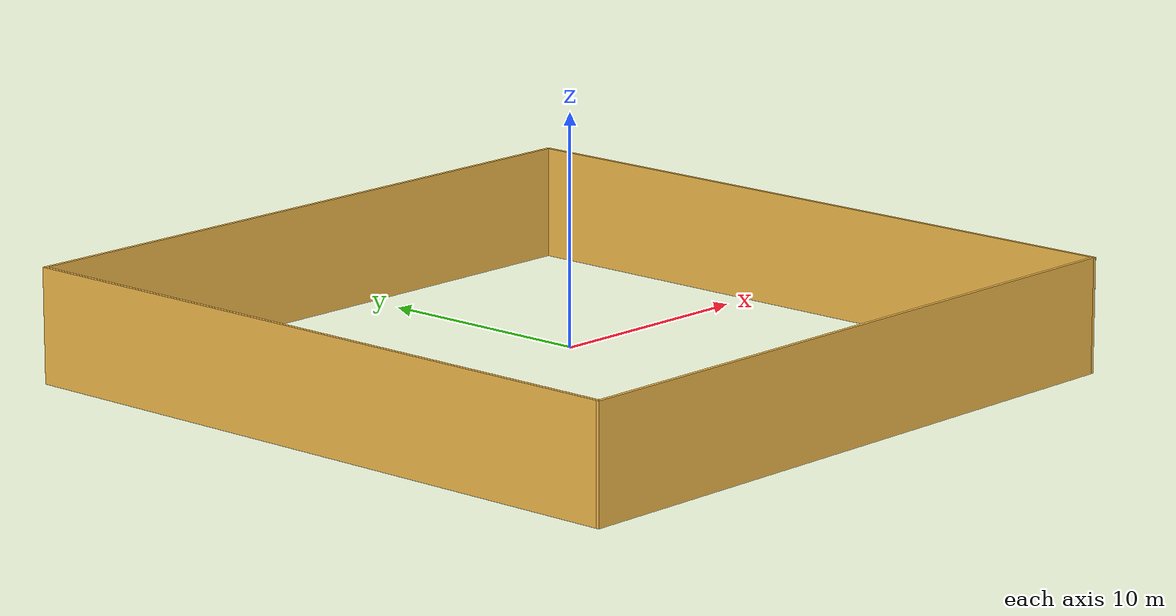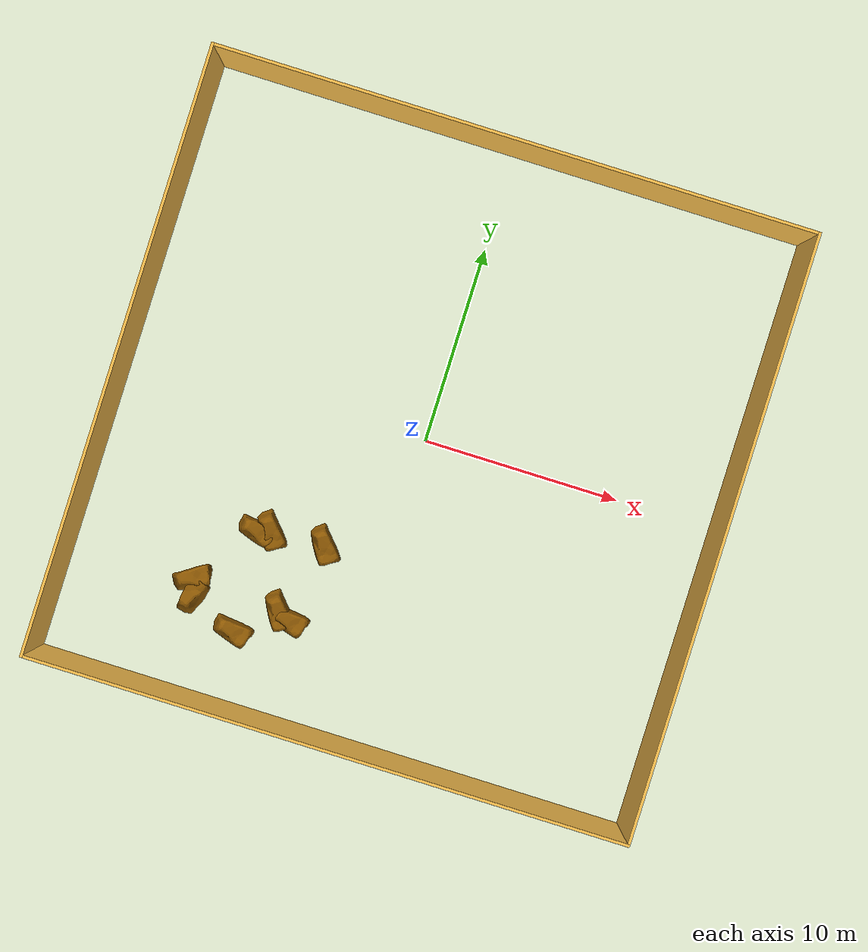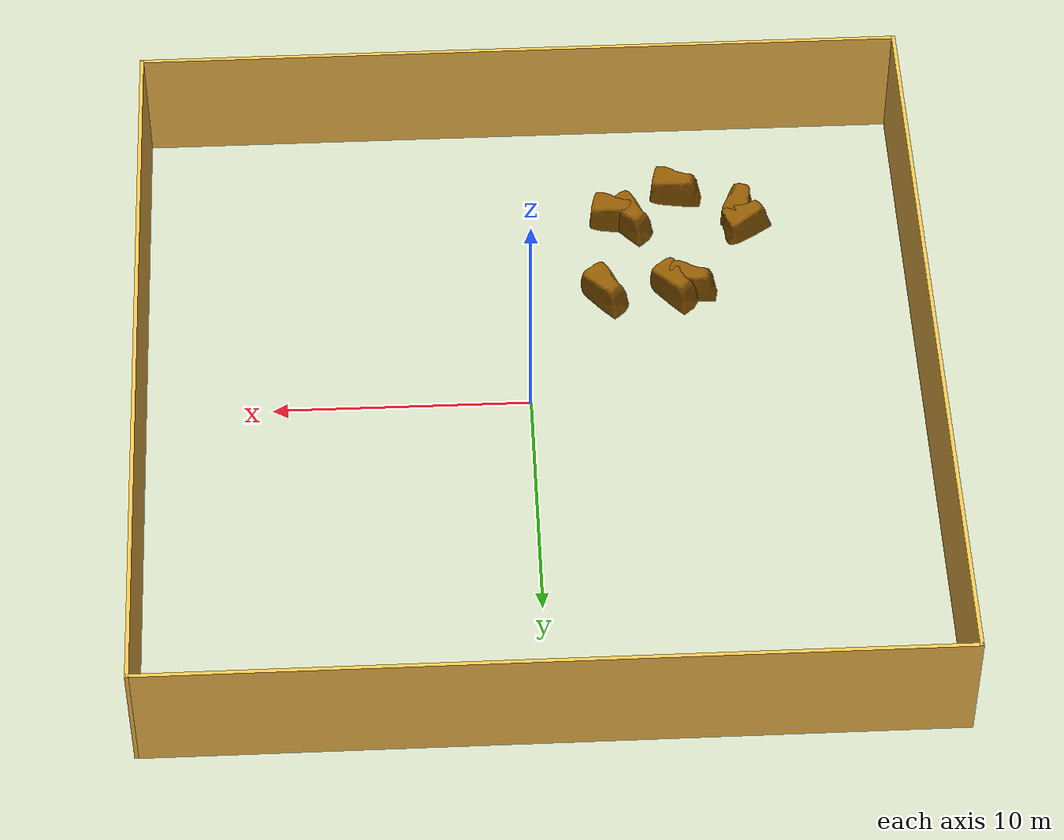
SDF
<sdf version="1.7">
 <world name="default">
  <gravity>0 0 -3.711</gravity>
  <include><uri>model://sun</uri></include>
  <scene><background>0.9 0.7 0.4 1</background><ambient>0.4 0.4 0.4 1</ambient><shadows>1</shadows></scene>
  <magnetic_field>6e-06 2.3e-05 -4.2e-05</magnetic_field>
  <atmosphere type="adiabatic"/>
  <physics type="ode">
   <max_step_size>0.001</max_step_size>
   <real_time_factor>1</real_time_factor>
   <real_time_update_rate>1000</real_time_update_rate>
  </physics>
  <spherical_coordinates>
   <surface_model>EARTH_WGS84</surface_model>
   <latitude_deg>0</latitude_deg>
   <longitude_deg>0</longitude_deg>
   <elevation>0</elevation>
   <heading_deg>0</heading_deg>
  </spherical_coordinates>
  <model name="mars_wall">
   <pose>-0.195463 -0.246306 -0 0 -0 0</pose>
   <link name="Wall_0">
    <collision name="Wall_0_Collision">
     <geometry><box><size>31 0.15 5.0</size></box></geometry>
     <pose>0 0 1.25 0 -0 0</pose>
    </collision>
    <visual name="Wall_0_Visual">
     <pose>0 0 1.25 0 -0 0</pose>
     <geometry><box><size>31 0.15 5.0</size></box></geometry>
     <material>
      <script><uri>file://media/materials/scripts/gazebo.material</uri><name>Gazebo/Grey</name></script>
      <ambient>1 0.764706 0.305882 1</ambient>
     </material>
     <meta><layer>0</layer></meta>
    </visual>
    <pose>-15.3 0 0 0 -0 1.5708</pose>
   </link>
   <link name="Wall_3">
    <collision name="Wall_3_Collision">
     <geometry><box><size>30.75 0.15 5.0</size></box></geometry>
     <pose>0 0 1.25 0 -0 0</pose>
    </collision>
    <visual name="Wall_3_Visual">
     <pose>0 0 1.25 0 -0 0</pose>
     <geometry><box><size>30.75 0.15 5.0</size></box></geometry>
     <material>
      <script><uri>file://media/materials/scripts/gazebo.material</uri><name>Gazebo/Grey</name></script>
      <ambient>1 0.764706 0.305882 1</ambient>
     </material>
     <meta><layer>0</layer></meta>
    </visual>
    <pose>-0 -15.425 0 0 -0 0</pose>
   </link>
   <link name="Wall_5">
    <collision name="Wall_5_Collision">
     <geometry><box><size>31 0.15 5.0</size></box></geometry>
     <pose>0 0 1.25 0 -0 0</pose>
    </collision>
    <visual name="Wall_5_Visual">
     <pose>0 0 1.25 0 -0 0</pose>
     <geometry><box><size>31 0.15 5.0</size></box></geometry>
     <material>
      <script><uri>file://media/materials/scripts/gazebo.material</uri><name>Gazebo/Grey</name></script>
      <ambient>1 0.764706 0.305882 1</ambient>
     </material>
     <meta><layer>0</layer></meta>
    </visual>
    <pose>15.3 0 0 0 -0 1.5708</pose>
   </link>
   <link name="Wall_6">
    <collision name="Wall_6_Collision">
     <geometry><box><size>30.75 0.15 5.0</size></box></geometry>
     <pose>0 0 1.25 0 -0 0</pose>
    </collision>
    <visual name="Wall_6_Visual">
     <pose>0 0 1.25 0 -0 0</pose>
     <geometry><box><size>30.75 0.15 5.0</size></box></geometry>
     <material>
      <script><uri>file://media/materials/scripts/gazebo.material</uri><name>Gazebo/Grey</name></script>
      <ambient>1 0.764706 0.305882 1</ambient>
     </material>
     <meta><layer>0</layer></meta>
    </visual>
    <pose>-0 15.425 0 0 -0 3.14159</pose>
   </link>
   <static>1</static>
  </model>
  <model name="rock5_0">
   <link name="link">
    <inertial>
     <mass>0.25</mass>
     <inertia><ixx>0.00015</ixx><ixy>0</ixy><ixz>0</ixz><iyy>0.00015</iyy><iyz>0</iyz><izz>0.00015</izz></inertia>
    </inertial>
    <velocity_decay><linear>0</linear><angular>0</angular></velocity_decay>
    <visual name="visual">
     <geometry><mesh><uri>model://rock5/meshes/model.dae</uri><scale>2 2 2</scale></mesh></geometry>
     <material>
      <shader type="vertex"><normal_map>__default__</normal_map></shader>
      <script><name>ModelPreview_1::link::visual_MATERIAL_</name><uri>__default__</uri></script>
      <ambient>0.18 0.204 0.212 1</ambient>
      <diffuse>0.561 0.349 0.008 1</diffuse>
      <specular>0.18 0.204 0.212 1</specular>
      <emissive>0.757 0.49 0.067 1</emissive>
      <lighting>1</lighting>
     </material>
    </visual>
    <collision name="collision">
     <geometry><mesh><uri>model://rock5/meshes/model.dae</uri><scale>2 2 2</scale></mesh></geometry>
     <surface>
      <friction>
       <ode><mu>30</mu><mu2>30</mu2><fdir1>0 0 0</fdir1><slip1>0</slip1><slip2>0</slip2></ode>
       <torsional>
        <coefficient>1</coefficient>
        <patch_radius>0</patch_radius>
        <surface_radius>0</surface_radius>
        <use_patch_radius>1</use_patch_radius>
        <ode><slip>0</slip></ode>
       </torsional>
      </friction>
      <bounce><restitution_coefficient>0</restitution_coefficient><threshold>1e+06</threshold></bounce>
      <contact>
       <collide_without_contact>0</collide_without_contact>
       <collide_without_contact_bitmask>1</collide_without_contact_bitmask>
       <collide_bitmask>1</collide_bitmask>
       <ode>
        <soft_cfm>0</soft_cfm>
        <soft_erp>0.2</soft_erp>
        <kp>1e+06</kp>
        <kd>100</kd>
        <max_vel>1</max_vel>
        <min_depth>0.002</min_depth>
       </ode>
       <bullet>
        <split_impulse>1</split_impulse>
        <split_impulse_penetration_threshold>-0.01</split_impulse_penetration_threshold>
        <soft_cfm>0</soft_cfm>
        <soft_erp>0.2</soft_erp>
        <kp>1e+06</kp>
        <kd>100</kd>
       </bullet>
      </contact>
     </surface>
    </collision>
   </link>
   <static>1</static>
   <pose>-9.24393 -8.2329 -1.53618 0 -0 0</pose>
  </model>
  <model name="rock5_0_clone">
   <link name="link">
    <inertial>
     <mass>0.25</mass>
     <inertia><ixx>0.00015</ixx><ixy>0</ixy><ixz>0</ixz><iyy>0.00015</iyy><iyz>0</iyz><izz>0.00015</izz></inertia>
    </inertial>
    <velocity_decay><linear>0</linear><angular>0</angular></velocity_decay>
    <visual name="visual">
     <geometry><mesh><uri>model://rock5/meshes/model.dae</uri><scale>2 2 2</scale></mesh></geometry>
     <material>
      <shader type="vertex"><normal_map>__default__</normal_map></shader>
      <script><name>ModelPreview_1::link::visual_MATERIAL_</name><uri>__default__</uri></script>
      <ambient>0.18 0.204 0.212 1</ambient>
      <diffuse>0.561 0.349 0.008 1</diffuse>
      <specular>0.18 0.204 0.212 1</specular>
      <emissive>0.757 0.49 0.067 1</emissive>
      <lighting>1</lighting>
     </material>
    </visual>
    <collision name="collision">
     <geometry><mesh><uri>model://rock5/meshes/model.dae</uri><scale>2 2 2</scale></mesh></geometry>
     <surface>
      <friction>
       <ode><mu>30</mu><mu2>30</mu2><fdir1>0 0 0</fdir1><slip1>0</slip1><slip2>0</slip2></ode>
       <torsional>
        <coefficient>1</coefficient>
        <patch_radius>0</patch_radius>
        <surface_radius>0</surface_radius>
        <use_patch_radius>1</use_patch_radius>
        <ode><slip>0</slip></ode>
       </torsional>
      </friction>
      <bounce><restitution_coefficient>0</restitution_coefficient><threshold>1e+06</threshold></bounce>
      <contact>
       <collide_without_contact>0</collide_without_contact>
       <collide_without_contact_bitmask>1</collide_without_contact_bitmask>
       <collide_bitmask>1</collide_bitmask>
       <ode>
        <soft_cfm>0</soft_cfm>
        <soft_erp>0.2</soft_erp>
        <kp>1e+06</kp>
        <kd>100</kd>
        <max_vel>1</max_vel>
        <min_depth>0.002</min_depth>
       </ode>
       <bullet>
        <split_impulse>1</split_impulse>
        <split_impulse_penetration_threshold>-0.01</split_impulse_penetration_threshold>
        <soft_cfm>0</soft_cfm>
        <soft_erp>0.2</soft_erp>
        <kp>1e+06</kp>
        <kd>100</kd>
       </bullet>
      </contact>
     </surface>
    </collision>
   </link>
   <static>1</static>
   <pose>-7.41088 -8.10325 -1.53618 0 0 -0.822859</pose>
  </model>
  <model name="rock5_0_clone_0">
   <link name="link">
    <inertial>
     <mass>0.25</mass>
     <inertia><ixx>0.00015</ixx><ixy>0</ixy><ixz>0</ixz><iyy>0.00015</iyy><iyz>0</iyz><izz>0.00015</izz></inertia>
    </inertial>
    <velocity_decay><linear>0</linear><angular>0</angular></velocity_decay>
    <visual name="visual">
     <geometry><mesh><uri>model://rock5/meshes/model.dae</uri><scale>2 2 2</scale></mesh></geometry>
     <material>
      <shader type="vertex"><normal_map>__default__</normal_map></shader>
      <script><name>ModelPreview_1::link::visual_MATERIAL_</name><uri>__default__</uri></script>
      <ambient>0.18 0.204 0.212 1</ambient>
      <diffuse>0.561 0.349 0.008 1</diffuse>
      <specular>0.18 0.204 0.212 1</specular>
      <emissive>0.757 0.49 0.067 1</emissive>
      <lighting>1</lighting>
     </material>
    </visual>
    <collision name="collision">
     <geometry><mesh><uri>model://rock5/meshes/model.dae</uri><scale>2 2 2</scale></mesh></geometry>
     <surface>
      <friction>
       <ode><mu>30</mu><mu2>30</mu2><fdir1>0 0 0</fdir1><slip1>0</slip1><slip2>0</slip2></ode>
       <torsional>
        <coefficient>1</coefficient>
        <patch_radius>0</patch_radius>
        <surface_radius>0</surface_radius>
        <use_patch_radius>1</use_patch_radius>
        <ode><slip>0</slip></ode>
       </torsional>
      </friction>
      <bounce><restitution_coefficient>0</restitution_coefficient><threshold>1e+06</threshold></bounce>
      <contact>
       <collide_without_contact>0</collide_without_contact>
       <collide_without_contact_bitmask>1</collide_without_contact_bitmask>
       <collide_bitmask>1</collide_bitmask>
       <ode>
        <soft_cfm>0</soft_cfm>
        <soft_erp>0.2</soft_erp>
        <kp>1e+06</kp>
        <kd>100</kd>
        <max_vel>1</max_vel>
        <min_depth>0.002</min_depth>
       </ode>
       <bullet>
        <split_impulse>1</split_impulse>
        <split_impulse_penetration_threshold>-0.01</split_impulse_penetration_threshold>
        <soft_cfm>0</soft_cfm>
        <soft_erp>0.2</soft_erp>
        <kp>1e+06</kp>
        <kd>100</kd>
       </bullet>
      </contact>
     </surface>
    </collision>
   </link>
   <static>1</static>
   <pose>-3.80755 -11.6543 -1.53618 0 0 -1.51738</pose>
  </model>
  <model name="rock5_0_clone_0_clone">
   <link name="link">
    <inertial>
     <mass>0.25</mass>
     <inertia><ixx>0.00015</ixx><ixy>0</ixy><ixz>0</ixz><iyy>0.00015</iyy><iyz>0</iyz><izz>0.00015</izz></inertia>
    </inertial>
    <velocity_decay><linear>0</linear><angular>0</angular></velocity_decay>
    <visual name="visual">
     <geometry><mesh><uri>model://rock5/meshes/model.dae</uri><scale>2 2 2</scale></mesh></geometry>
     <material>
      <shader type="vertex"><normal_map>__default__</normal_map></shader>
      <script><name>ModelPreview_1::link::visual_MATERIAL_</name><uri>__default__</uri></script>
      <ambient>0.18 0.204 0.212 1</ambient>
      <diffuse>0.561 0.349 0.008 1</diffuse>
      <specular>0.18 0.204 0.212 1</specular>
      <emissive>0.757 0.49 0.067 1</emissive>
      <lighting>1</lighting>
     </material>
    </visual>
    <collision name="collision">
     <geometry><mesh><uri>model://rock5/meshes/model.dae</uri><scale>2 2 2</scale></mesh></geometry>
     <surface>
      <friction>
       <ode><mu>30</mu><mu2>30</mu2><fdir1>0 0 0</fdir1><slip1>0</slip1><slip2>0</slip2></ode>
       <torsional>
        <coefficient>1</coefficient>
        <patch_radius>0</patch_radius>
        <surface_radius>0</surface_radius>
        <use_patch_radius>1</use_patch_radius>
        <ode><slip>0</slip></ode>
       </torsional>
      </friction>
      <bounce><restitution_coefficient>0</restitution_coefficient><threshold>1e+06</threshold></bounce>
      <contact>
       <collide_without_contact>0</collide_without_contact>
       <collide_without_contact_bitmask>1</collide_without_contact_bitmask>
       <collide_bitmask>1</collide_bitmask>
       <ode>
        <soft_cfm>0</soft_cfm>
        <soft_erp>0.2</soft_erp>
        <kp>1e+06</kp>
        <kd>100</kd>
        <max_vel>1</max_vel>
        <min_depth>0.002</min_depth>
       </ode>
       <bullet>
        <split_impulse>1</split_impulse>
        <split_impulse_penetration_threshold>-0.01</split_impulse_penetration_threshold>
        <soft_cfm>0</soft_cfm>
        <soft_erp>0.2</soft_erp>
        <kp>1e+06</kp>
        <kd>100</kd>
       </bullet>
      </contact>
     </surface>
    </collision>
   </link>
   <static>1</static>
   <pose>-4.08086 -6.44863 -1.53618 0 0 -1.51738</pose>
  </model>
  <model name="rock5_0_clone_0_clone_0">
   <link name="link">
    <inertial>
     <mass>0.25</mass>
     <inertia><ixx>0.00015</ixx><ixy>0</ixy><ixz>0</ixz><iyy>0.00015</iyy><iyz>0</iyz><izz>0.00015</izz></inertia>
    </inertial>
    <velocity_decay><linear>0</linear><angular>0</angular></velocity_decay>
    <visual name="visual">
     <geometry><mesh><uri>model://rock5/meshes/model.dae</uri><scale>2 2 2</scale></mesh></geometry>
     <material>
      <shader type="vertex"><normal_map>__default__</normal_map></shader>
      <script><name>ModelPreview_1::link::visual_MATERIAL_</name><uri>__default__</uri></script>
      <ambient>0.18 0.204 0.212 1</ambient>
      <diffuse>0.561 0.349 0.008 1</diffuse>
      <specular>0.18 0.204 0.212 1</specular>
      <emissive>0.757 0.49 0.067 1</emissive>
      <lighting>1</lighting>
     </material>
    </visual>
    <collision name="collision">
     <geometry><mesh><uri>model://rock5/meshes/model.dae</uri><scale>2 2 2</scale></mesh></geometry>
     <surface>
      <friction>
       <ode><mu>30</mu><mu2>30</mu2><fdir1>0 0 0</fdir1><slip1>0</slip1><slip2>0</slip2></ode>
       <torsional>
        <coefficient>1</coefficient>
        <patch_radius>0</patch_radius>
        <surface_radius>0</surface_radius>
        <use_patch_radius>1</use_patch_radius>
        <ode><slip>0</slip></ode>
       </torsional>
      </friction>
      <bounce><restitution_coefficient>0</restitution_coefficient><threshold>1e+06</threshold></bounce>
      <contact>
       <collide_without_contact>0</collide_without_contact>
       <collide_without_contact_bitmask>1</collide_without_contact_bitmask>
       <collide_bitmask>1</collide_bitmask>
       <ode>
        <soft_cfm>0</soft_cfm>
        <soft_erp>0.2</soft_erp>
        <kp>1e+06</kp>
        <kd>100</kd>
        <max_vel>1</max_vel>
        <min_depth>0.002</min_depth>
       </ode>
       <bullet>
        <split_impulse>1</split_impulse>
        <split_impulse_penetration_threshold>-0.01</split_impulse_penetration_threshold>
        <soft_cfm>0</soft_cfm>
        <soft_erp>0.2</soft_erp>
        <kp>1e+06</kp>
        <kd>100</kd>
       </bullet>
      </contact>
     </surface>
    </collision>
   </link>
   <static>1</static>
   <pose>-1.25486 -10.3102 -1.53618 0 0 -1.51738</pose>
  </model>
  <model name="rock5_0_clone_0_clone_1">
   <link name="link">
    <inertial>
     <mass>0.25</mass>
     <inertia><ixx>0.00015</ixx><ixy>0</ixy><ixz>0</ixz><iyy>0.00015</iyy><iyz>0</iyz><izz>0.00015</izz></inertia>
    </inertial>
    <velocity_decay><linear>0</linear><angular>0</angular></velocity_decay>
    <visual name="visual">
     <geometry><mesh><uri>model://rock5/meshes/model.dae</uri><scale>2 2 2</scale></mesh></geometry>
     <material>
      <shader type="vertex"><normal_map>__default__</normal_map></shader>
      <script><name>ModelPreview_1::link::visual_MATERIAL_</name><uri>__default__</uri></script>
      <ambient>0.18 0.204 0.212 1</ambient>
      <diffuse>0.561 0.349 0.008 1</diffuse>
      <specular>0.18 0.204 0.212 1</specular>
      <emissive>0.757 0.49 0.067 1</emissive>
      <lighting>1</lighting>
     </material>
    </visual>
    <collision name="collision">
     <geometry><mesh><uri>model://rock5/meshes/model.dae</uri><scale>2 2 2</scale></mesh></geometry>
     <surface>
      <friction>
       <ode><mu>30</mu><mu2>30</mu2><fdir1>0 0 0</fdir1><slip1>0</slip1><slip2>0</slip2></ode>
       <torsional>
        <coefficient>1</coefficient>
        <patch_radius>0</patch_radius>
        <surface_radius>0</surface_radius>
        <use_patch_radius>1</use_patch_radius>
        <ode><slip>0</slip></ode>
       </torsional>
      </friction>
      <bounce><restitution_coefficient>0</restitution_coefficient><threshold>1e+06</threshold></bounce>
      <contact>
       <collide_without_contact>0</collide_without_contact>
       <collide_without_contact_bitmask>1</collide_without_contact_bitmask>
       <collide_bitmask>1</collide_bitmask>
       <ode>
        <soft_cfm>0</soft_cfm>
        <soft_erp>0.2</soft_erp>
        <kp>1e+06</kp>
        <kd>100</kd>
        <max_vel>1</max_vel>
        <min_depth>0.002</min_depth>
       </ode>
       <bullet>
        <split_impulse>1</split_impulse>
        <split_impulse_penetration_threshold>-0.01</split_impulse_penetration_threshold>
        <soft_cfm>0</soft_cfm>
        <soft_erp>0.2</soft_erp>
        <kp>1e+06</kp>
        <kd>100</kd>
       </bullet>
      </contact>
     </surface>
    </collision>
   </link>
   <static>1</static>
   <pose>-1.04106 -8.06059 -1.53618 0 0 -2.25493</pose>
  </model>
  <model name="rock5_0_clone_0_clone_1_clone">
   <link name="link">
    <inertial>
     <mass>0.25</mass>
     <inertia><ixx>0.00015</ixx><ixy>0</ixy><ixz>0</ixz><iyy>0.00015</iyy><iyz>0</iyz><izz>0.00015</izz></inertia>
    </inertial>
    <velocity_decay><linear>0</linear><angular>0</angular></velocity_decay>
    <visual name="visual">
     <geometry><mesh><uri>model://rock5/meshes/model.dae</uri><scale>2 2 2</scale></mesh></geometry>
     <material>
      <shader type="vertex"><normal_map>__default__</normal_map></shader>
      <script><name>ModelPreview_1::link::visual_MATERIAL_</name><uri>__default__</uri></script>
      <ambient>0.18 0.204 0.212 1</ambient>
      <diffuse>0.561 0.349 0.008 1</diffuse>
      <specular>0.18 0.204 0.212 1</specular>
      <emissive>0.757 0.49 0.067 1</emissive>
      <lighting>1</lighting>
     </material>
    </visual>
    <collision name="collision">
     <geometry><mesh><uri>model://rock5/meshes/model.dae</uri><scale>2 2 2</scale></mesh></geometry>
     <surface>
      <friction>
       <ode><mu>30</mu><mu2>30</mu2><fdir1>0 0 0</fdir1><slip1>0</slip1><slip2>0</slip2></ode>
       <torsional>
        <coefficient>1</coefficient>
        <patch_radius>0</patch_radius>
        <surface_radius>0</surface_radius>
        <use_patch_radius>1</use_patch_radius>
        <ode><slip>0</slip></ode>
       </torsional>
      </friction>
      <bounce><restitution_coefficient>0</restitution_coefficient><threshold>1e+06</threshold></bounce>
      <contact>
       <collide_without_contact>0</collide_without_contact>
       <collide_without_contact_bitmask>1</collide_without_contact_bitmask>
       <collide_bitmask>1</collide_bitmask>
       <ode>
        <soft_cfm>0</soft_cfm>
        <soft_erp>0.2</soft_erp>
        <kp>1e+06</kp>
        <kd>100</kd>
        <max_vel>1</max_vel>
        <min_depth>0.002</min_depth>
       </ode>
       <bullet>
        <split_impulse>1</split_impulse>
        <split_impulse_penetration_threshold>-0.01</split_impulse_penetration_threshold>
        <soft_cfm>0</soft_cfm>
        <soft_erp>0.2</soft_erp>
        <kp>1e+06</kp>
        <kd>100</kd>
       </bullet>
      </contact>
     </surface>
    </collision>
   </link>
   <static>1</static>
   <pose>-3.83939 -8.17076 -1.53618 0 0 -2.25493</pose>
  </model>
  <model name="rock5_0_clone_0_clone_1_clone_0">
   <link name="link">
    <inertial>
     <mass>0.25</mass>
     <inertia><ixx>0.00015</ixx><ixy>0</ixy><ixz>0</ixz><iyy>0.00015</iyy><iyz>0</iyz><izz>0.00015</izz></inertia>
    </inertial>
    <velocity_decay><linear>0</linear><angular>0</angular></velocity_decay>
    <visual name="visual">
     <geometry><mesh><uri>model://rock5/meshes/model.dae</uri><scale>2 2 2</scale></mesh></geometry>
     <material>
      <shader type="vertex"><normal_map>__default__</normal_map></shader>
      <script><name>ModelPreview_1::link::visual_MATERIAL_</name><uri>__default__</uri></script>
      <ambient>0.18 0.204 0.212 1</ambient>
      <diffuse>0.561 0.349 0.008 1</diffuse>
      <specular>0.18 0.204 0.212 1</specular>
      <emissive>0.757 0.49 0.067 1</emissive>
      <lighting>1</lighting>
     </material>
    </visual>
    <collision name="collision">
     <geometry><mesh><uri>model://rock5/meshes/model.dae</uri><scale>2 2 2</scale></mesh></geometry>
     <surface>
      <friction>
       <ode><mu>30</mu><mu2>30</mu2><fdir1>0 0 0</fdir1><slip1>0</slip1><slip2>0</slip2></ode>
       <torsional>
        <coefficient>1</coefficient>
        <patch_radius>0</patch_radius>
        <surface_radius>0</surface_radius>
        <use_patch_radius>1</use_patch_radius>
        <ode><slip>0</slip></ode>
       </torsional>
      </friction>
      <bounce><restitution_coefficient>0</restitution_coefficient><threshold>1e+06</threshold></bounce>
      <contact>
       <collide_without_contact>0</collide_without_contact>
       <collide_without_contact_bitmask>1</collide_without_contact_bitmask>
       <collide_bitmask>1</collide_bitmask>
       <ode>
        <soft_cfm>0</soft_cfm>
        <soft_erp>0.2</soft_erp>
        <kp>1e+06</kp>
        <kd>100</kd>
        <max_vel>1</max_vel>
        <min_depth>0.002</min_depth>
       </ode>
       <bullet>
        <split_impulse>1</split_impulse>
        <split_impulse_penetration_threshold>-0.01</split_impulse_penetration_threshold>
        <soft_cfm>0</soft_cfm>
        <soft_erp>0.2</soft_erp>
        <kp>1e+06</kp>
        <kd>100</kd>
       </bullet>
      </contact>
     </surface>
    </collision>
   </link>
   <static>1</static>
   <pose>-2.25956 -11.9292 -1.53618 0 0 -2.25493</pose>
  </model>
 </world>
</sdf>
